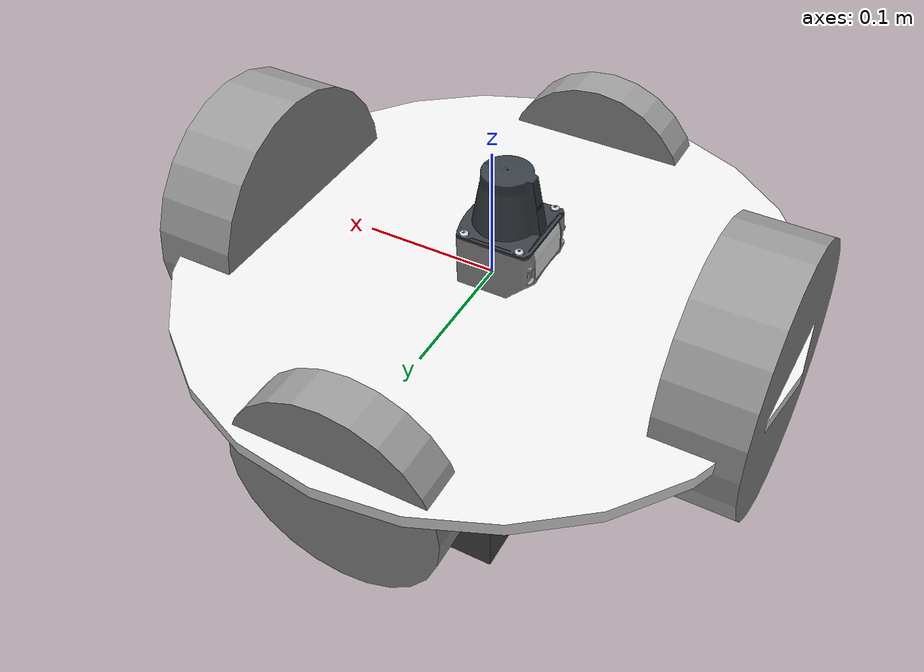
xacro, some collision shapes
<?xml version='1.0'?>

<robot name="myrobot" xmlns:xacro="http://www.ros.org/wiki/xacro">

  <xacro:property name="M_PI" value="3.1415926535897931" />

  <xacro:include filename="$(find robot_description)/urdf/robot.gazebo" />
  <xacro:include filename="$(find robot_description)/urdf/materials.xacro" />

  <!-- Base Robotic -->
  <link name="base_link">
    <inertial>
      <mass value="2" />
      <origin xyz="0 0 0.0" />
      <inertia ixx="0.01" ixy="0.0" ixz="0.0"
        iyy="0.01" iyz="0.0" izz="0.5" />
    </inertial>

      <visual>
        <origin xyz="0 0 0" rpy="0 0 0" />
        <geometry>
          <cylinder length="0.0095" radius="0.2245"/>
        </geometry>
        <material name ="White" />
      </visual>

      <collision>
        <origin xyz="0 0 0" rpy="0 0 0" />
        <geometry>
          <cylinder length="0.0095" radius="0.2245"/>
        </geometry>
      </collision>
  </link>

  <!-- Bateria -->
  <link name="battery_box">
    <inertial>
      <mass value="0.001" />
      <origin xyz="0 0 0" />
      <inertia ixx="0.0001" ixy="0.0" ixz="0.0"
        iyy="0.0001" iyz="0.0"
        izz="0.0001" />
    </inertial>

      <visual>
        <origin xyz="0 0 0" rpy="0 0 0" />
        <geometry>
          <box size="0.1778 0.3366 0.0762" />
        </geometry>
        <material name ="veryDarkGrey" />
      </visual>

      <collision>
        <origin xyz="0 0 0" rpy="0 0 0" />
        <geometry>
          <box size="0.1778 0.3366 0.0762" />
        </geometry>
      </collision>
  </link>

  <joint name="battery_box_joint" type="fixed">
    <origin xyz="0 0 -0.04285" rpy="0 0 0" />
    <parent link="base_link" />
    <child link="battery_box" />
  </joint>

  <!-- Roda Castor Frontal -->
  <link name="front_caster">
    <inertial>
      <mass value="0.001" />
      <origin xyz="0 0 0" />
      <inertia ixx="0.0001" ixy="0.0" ixz="0.0"
          iyy="0.0001" iyz="0.0"
          izz="0.0001" />
    </inertial>

      <visual>
        <origin xyz="0 0 0" rpy="-1.5707 0 1.5707" />
        <geometry>
          <mesh filename="package://robot_description/meshes/castor.dae"/>
        </geometry>
        <material name ="light_grey">
          <color rgba="0.6 0.6 0.6 1"/>
        </material>
      </visual>

      <collision>
        <origin xyz="0 0 0" rpy="-1.5707 0 1.5707" />
        <geometry>
          <cylinder length="0.0605" radius="0.097"/>
        </geometry>
      </collision>
  </link>

  <joint name="front_caster_joint" type="fixed">
    <origin xyz="0.18745 0 -0.00475" rpy="0 0 0" />
    <parent link="base_link" />
    <child link="front_caster" />
  </joint>

  <link name="rear_caster">
    <inertial>
      <mass value="0.001" />
      <origin xyz="0 0 0" />
      <inertia ixx="0.0001" ixy="0.0" ixz="0.0"
        iyy="0.0001" iyz="0.0"
        izz="0.0001" />
      </inertial>

      <visual>
        <origin xyz="0 0 0" rpy="-1.5707 0 1.5707" />
        <geometry>
          <mesh filename="package://robot_description/meshes/castor.dae"/>
        </geometry>
        <material name ="light_grey">
          <color rgba="0.6 0.6 0.6 1"/>
        </material>
      </visual>

      <collision>
        <origin xyz="0 0 0" rpy="-1.5707 0 1.5707" />
        <geometry>
          <cylinder length="0.0605" radius="0.097"/>
        </geometry>
      </collision>
  </link>

  <joint name="rear_caster_joint" type="fixed">
    <origin xyz="-0.18745 0 -0.00475" rpy="0 0 0" />
    <parent link="base_link" />
    <child link="rear_caster" />
  </joint>

  <link name="left_axle_link">
    <inertial>
      <origin xyz="0 0 0"/>
      <mass value="0.01" />
      <inertia ixx="0.001" ixy="0.0" ixz="0.0"
        iyy="0.001" iyz="0.0" izz="0.001" />
      </inertial>

      <visual>
        <origin xyz="0 0 0" rpy="0 1.5707 1.5707" />
        <geometry>
          <cylinder radius="0.00635" length = "0.00635"/>
        </geometry>
        <material name ="light_grey" />
      </visual>

      <collision>
        <origin xyz="0 0 0" rpy="0 1.5707 1.5707" />
        <geometry>
          <cylinder radius="0.00635" length = "0.00635"/>
        </geometry>
      </collision>
  </link>

  <joint name="left_axle_joint" type="fixed">
    <origin xyz="0 0.171475 0.017" rpy="0 0 0"/>
    <parent link="battery_box"/>
    <child link="left_axle_link"/>
    <axis xyz="0 1 0"/>
  </joint>

  <link name="right_axle_link">
    <inertial>
      <origin xyz="0 0 0"/>
      <mass value="0.01" />
      <inertia ixx="0.001" ixy="0.0" ixz="0.0"
        iyy="0.001" iyz="0.0" izz="0.001" />
      </inertial>

      <visual>
        <origin xyz="0 0 0" rpy="0 1.5707 1.5707" />
        <geometry>
          <cylinder radius="0.00635" length = "0.00635"/>
        </geometry>
        <material name ="light_grey" />
      </visual>

      <collision>
        <origin xyz="0 0 0" rpy="0 1.5707 1.5707" />
        <geometry>
          <cylinder radius="0.00635" length = "0.00635"/>
        </geometry>
      </collision>
  </link>

  <joint name="right_axle_joint" type="fixed">
    <origin xyz="0 -0.171475 0.017" rpy="0 0 0"/>
    <parent link="battery_box"/>
    <child link="right_axle_link"/>
    <axis xyz="0 1 0"/>
  </joint>

  <link name="left_wheel_link">
    <inertial>
      <origin xyz="0 0 0"/>
      <mass value="0.01" />
      <inertia ixx="0.001" ixy="0.0" ixz="0.0"
        iyy="0.001" iyz="0.0" izz="0.001" />
      </inertial>

      <visual>
        <origin xyz="0 0 0" rpy="0 1.5707 1.5707" />
        <geometry>
          <cylinder radius="0.0762" length = "0.03175"/>
        </geometry>
        <material name ="grey" />
      </visual>

      <collision>
        <origin xyz="0 0 0" rpy="0 1.5707 1.5707" />
        <geometry>
          <cylinder radius="0.076" length = "0.03175"/>
        </geometry>
      </collision>
  </link>

  <joint name="left_wheel_joint" type="continuous">
    <origin xyz="0 0.01905 0" rpy="0 0 0"/>
    <parent link="left_axle_link"/>
    <child link="left_wheel_link"/>
    <axis xyz="0 1 0"/>
  </joint>

  <link name="right_wheel_link">
    <inertial>
      <origin xyz="0 0 0"/>
      <mass value="0.01" />
      <inertia ixx="0.001" ixy="0.0" ixz="0.0"
        iyy="0.001" iyz="0.0" izz="0.001" />
      </inertial>

      <visual>
        <origin xyz="0 0 0" rpy="0 1.5707 1.5707" />
        <geometry>
          <cylinder radius="0.0762" length = "0.03175"/>
        </geometry>
        <material name ="grey" />
      </visual>

      <collision>
        <origin xyz="0 0 0" rpy="0 1.5707 1.5707" />
        <geometry>
          <cylinder radius="0.076" length = "0.03175"/>
        </geometry>
      </collision>
  </link>

  <!-- Fixed because we never rotate it anyway, it is just for show -->
  <!-- NOTE This may prevent gazebo from working with this model -->
  <joint name="right_wheel_joint" type="continuous">
    <origin xyz="0 -0.01905 0" rpy="0 0 0"/>
    <parent link="right_axle_link"/>
    <child link="right_wheel_link"/>
    <axis xyz="0 1 0"/>
  </joint>

  <!-- Rplidar Laser -->
  <link name="base_laser">
    <collision>
      <origin xyz="0 0 0" rpy="0 0 1"/>
      <geometry>
        <box size="0.1 0.1 0.1"/>
      </geometry>
    </collision>

    <visual>
      <origin xyz="0 0 0.008" rpy="0 -${M_PI/2} ${M_PI}"/>
      <geometry>
        <mesh filename="package://robot_description/meshes/sick_tim571.dae" scale="0.001 0.001 0.001" />
      </geometry>
    </visual>

    <inertial>
      <mass value="0.00833634573995571" />
      <origin xyz="0 0 0" rpy="0 0 0"/>
      <inertia ixx="1.01866461240801E-06" ixy="-5.88447626567756E-08" ixz="7.83857244757914E-08" iyy="5.10039589974707E-07" iyz="-7.12664289617235E-09" izz="1.28270671527309E-06" />
    </inertial>
  </link>

  <joint name="laser_joint" type="fixed">
    <axis xyz="0 1 0" />
    <origin xyz="0 0 .025" rpy="0 0 0"/>
    <parent link="base_link"/>
    <child link="base_laser"/>
  </joint>

</robot>
